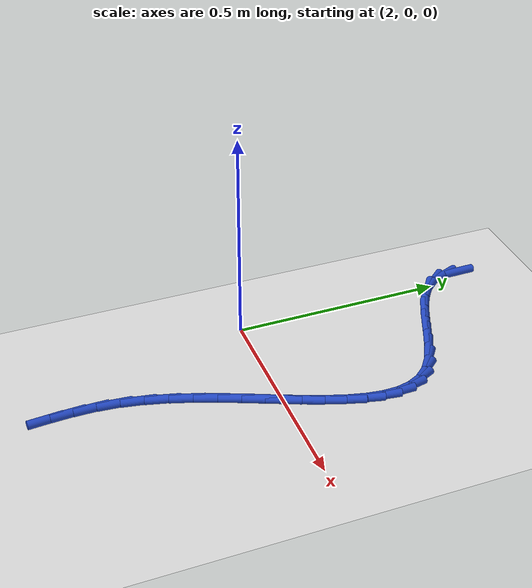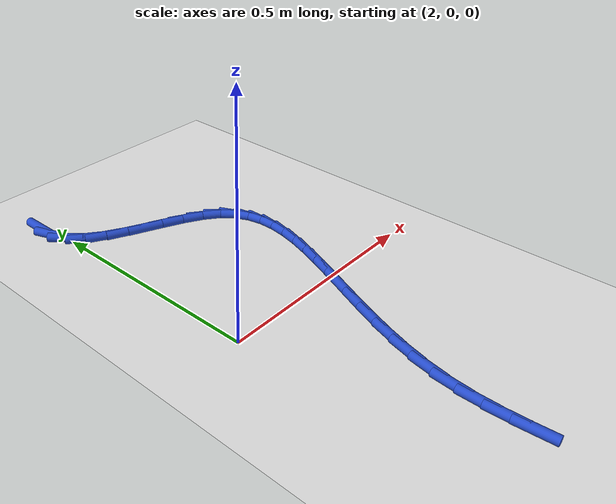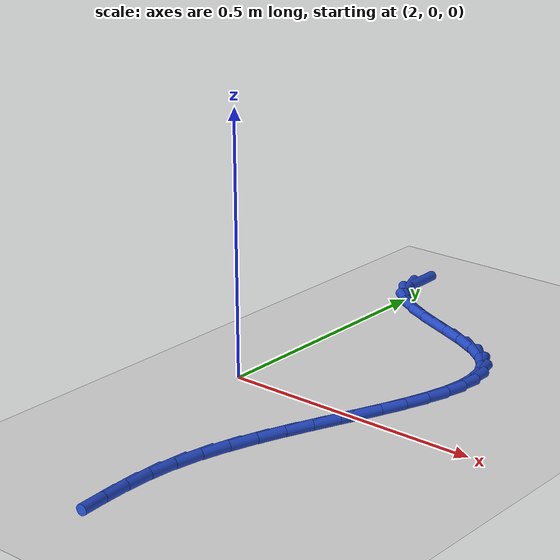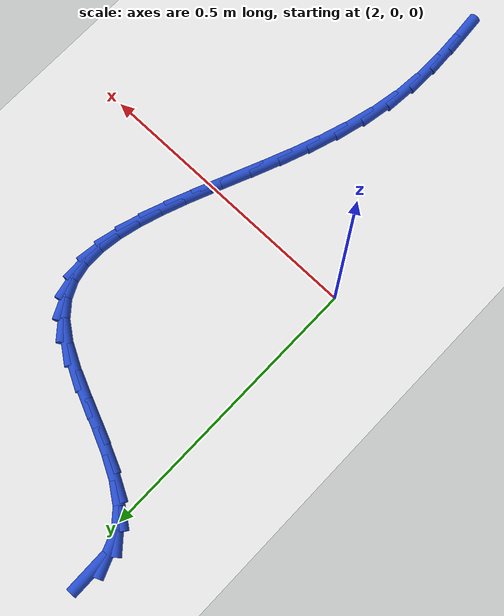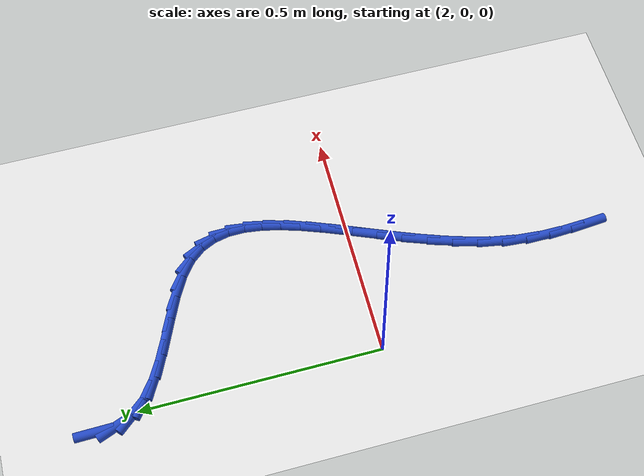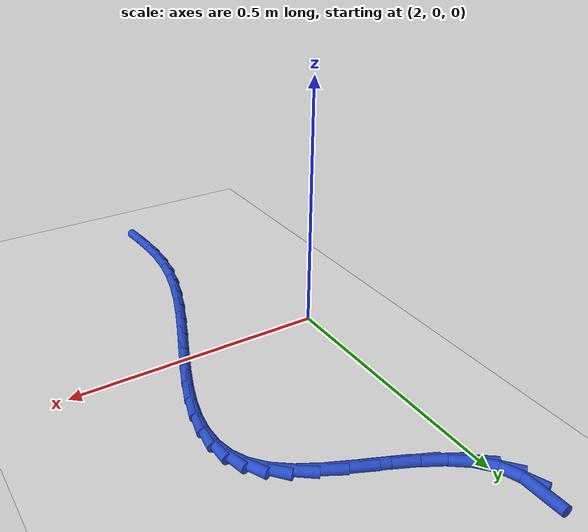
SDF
<sdf version="1.6">
 <world name="default">
  <model name="ground_plane">
   <static>1</static>
   <link name="link">
    <collision name="collision">
     <geometry><plane><normal>0 0 1</normal><size>100 100</size></plane></geometry>
     <surface><friction><ode><mu>100</mu><mu2>50</mu2></ode></friction></surface>
    </collision>
    <visual name="visual">
     <cast_shadows>0</cast_shadows>
     <geometry><plane><normal>0 0 1</normal><size>100 100</size></plane></geometry>
     <material>
      <script><uri>file://media/materials/scripts/gazebo.material</uri><name>Gazebo/WhiteGlow</name></script>
     </material>
    </visual>
   </link>
  </model>
  <model name="line">
   <link name="link_76">
    <pose>1.976926668266599 0.5870399198149353 0.01 0 1.57 -1.5561207616081631</pose>
    <collision name="collision">
     <geometry><cylinder><radius>0.01</radius><length>0.08</length></cylinder></geometry>
    </collision>
    <visual name="visual">
     <material>
      <script><name>Gazebo/Blue</name><uri>file://media/materials/scripts/gazebo.material</uri></script>
     </material>
     <geometry><cylinder><radius>0.01</radius><length>0.08</length></cylinder></geometry>
    </visual>
   </link>
   <link name="link_77">
    <pose>1.9775227201218342 0.5464275784137915 0.01 0 1.57 -1.1911691524824919</pose>
    <collision name="collision">
     <geometry><cylinder><radius>0.01</radius><length>0.08</length></cylinder></geometry>
    </collision>
    <visual name="visual">
     <material>
      <script><name>Gazebo/Blue</name><uri>file://media/materials/scripts/gazebo.material</uri></script>
     </material>
     <geometry><cylinder><radius>0.01</radius><length>0.08</length></cylinder></geometry>
    </visual>
   </link>
   <link name="link_78">
    <pose>1.991375269947519 0.511707710112623 0.01 0 1.57 -0.8541834276953869</pose>
    <collision name="collision">
     <geometry><cylinder><radius>0.01</radius><length>0.08</length></cylinder></geometry>
    </collision>
    <visual name="visual">
     <material>
      <script><name>Gazebo/Blue</name><uri>file://media/materials/scripts/gazebo.material</uri></script>
     </material>
     <geometry><cylinder><radius>0.01</radius><length>0.08</length></cylinder></geometry>
    </visual>
   </link>
   <link name="link_79">
    <pose>2.0169598006536513 0.4823371026553433 0.01 0 1.57 -0.6285751039968146</pose>
    <collision name="collision">
     <geometry><cylinder><radius>0.01</radius><length>0.08</length></cylinder></geometry>
    </collision>
    <visual name="visual">
     <material>
      <script><name>Gazebo/Blue</name><uri>file://media/materials/scripts/gazebo.material</uri></script>
     </material>
     <geometry><cylinder><radius>0.01</radius><length>0.08</length></cylinder></geometry>
    </visual>
   </link>
   <link name="link_80">
    <pose>2.051552602912916 0.45719039742961715 0.01 0 1.57 -0.49465646691797727</pose>
    <collision name="collision">
     <geometry><cylinder><radius>0.01</radius><length>0.08</length></cylinder></geometry>
    </collision>
    <visual name="visual">
     <material>
      <script><name>Gazebo/Blue</name><uri>file://media/materials/scripts/gazebo.material</uri></script>
     </material>
     <geometry><cylinder><radius>0.01</radius><length>0.08</length></cylinder></geometry>
    </visual>
   </link>
   <link name="link_81">
    <pose>2.0924295300891473 0.43514202353208215 0.01 0 1.57 -0.424331475846428</pose>
    <collision name="collision">
     <geometry><cylinder><radius>0.01</radius><length>0.08</length></cylinder></geometry>
    </collision>
    <visual name="visual">
     <material>
      <script><name>Gazebo/Blue</name><uri>file://media/materials/scripts/gazebo.material</uri></script>
     </material>
     <geometry><cylinder><radius>0.01</radius><length>0.08</length></cylinder></geometry>
    </visual>
   </link>
   <link name="link_82">
    <pose>2.1368664355461826 0.4150664100593753 0.01 0 1.57 -0.4016369612314232</pose>
    <collision name="collision">
     <geometry><cylinder><radius>0.01</radius><length>0.08</length></cylinder></geometry>
    </collision>
    <visual name="visual">
     <material>
      <script><name>Gazebo/Blue</name><uri>file://media/materials/scripts/gazebo.material</uri></script>
     </material>
     <geometry><cylinder><radius>0.01</radius><length>0.08</length></cylinder></geometry>
    </visual>
   </link>
   <link name="link_83">
    <pose>2.182139172647858 0.3958379861081334 0.01 0 1.57 -0.42254365303032254</pose>
    <collision name="collision">
     <geometry><cylinder><radius>0.01</radius><length>0.08</length></cylinder></geometry>
    </collision>
    <visual name="visual">
     <material>
      <script><name>Gazebo/Blue</name><uri>file://media/materials/scripts/gazebo.material</uri></script>
     </material>
     <geometry><cylinder><radius>0.01</radius><length>0.08</length></cylinder></geometry>
    </visual>
   </link>
   <link name="link_84">
    <pose>2.2255235947580085 0.3763311807749943 0.01 0 1.57 -0.49461190760615836</pose>
    <collision name="collision">
     <geometry><cylinder><radius>0.01</radius><length>0.08</length></cylinder></geometry>
    </collision>
    <visual name="visual">
     <material>
      <script><name>Gazebo/Blue</name><uri>file://media/materials/scripts/gazebo.material</uri></script>
     </material>
     <geometry><cylinder><radius>0.01</radius><length>0.08</length></cylinder></geometry>
    </visual>
   </link>
   <link name="link_85">
    <pose>2.264295555240471 0.35542042315659456 0.01 0 1.57 -0.6404566331524179</pose>
    <collision name="collision">
     <geometry><cylinder><radius>0.01</radius><length>0.08</length></cylinder></geometry>
    </collision>
    <visual name="visual">
     <material>
      <script><name>Gazebo/Blue</name><uri>file://media/materials/scripts/gazebo.material</uri></script>
     </material>
     <geometry><cylinder><radius>0.01</radius><length>0.08</length></cylinder></geometry>
    </visual>
   </link>
   <link name="link_86">
    <pose>2.2957425171723185 0.3319844543555239 0.01 0 1.57 -0.8676320434695225</pose>
    <collision name="collision">
     <geometry><cylinder><radius>0.01</radius><length>0.08</length></cylinder></geometry>
    </collision>
    <visual name="visual">
     <material>
      <script><name>Gazebo/Blue</name><uri>file://media/materials/scripts/gazebo.material</uri></script>
     </material>
     <geometry><cylinder><radius>0.01</radius><length>0.08</length></cylinder></geometry>
    </visual>
   </link>
   <link name="link_87">
    <pose>2.3183297820394775 0.30533948073521877 0.01 0 1.57 -1.120626432364721</pose>
    <collision name="collision">
     <geometry><cylinder><radius>0.01</radius><length>0.08</length></cylinder></geometry>
    </collision>
    <visual name="visual">
     <material>
      <script><name>Gazebo/Blue</name><uri>file://media/materials/scripts/gazebo.material</uri></script>
     </material>
     <geometry><cylinder><radius>0.01</radius><length>0.08</length></cylinder></geometry>
    </visual>
   </link>
   <link name="link_88">
    <pose>2.3326972803740347 0.2756093955674159 0.01 0 1.57 -1.3586519014329288</pose>
    <collision name="collision">
     <geometry><cylinder><radius>0.01</radius><length>0.08</length></cylinder></geometry>
    </collision>
    <visual name="visual">
     <material>
      <script><name>Gazebo/Blue</name><uri>file://media/materials/scripts/gazebo.material</uri></script>
     </material>
     <geometry><cylinder><radius>0.01</radius><length>0.08</length></cylinder></geometry>
    </visual>
   </link>
   <link name="link_89">
    <pose>2.3397197252800863 0.2430052935755408 0.01 0 1.57 -1.555142624802687</pose>
    <collision name="collision">
     <geometry><cylinder><radius>0.01</radius><length>0.08</length></cylinder></geometry>
    </collision>
    <visual name="visual">
     <material>
      <script><name>Gazebo/Blue</name><uri>file://media/materials/scripts/gazebo.material</uri></script>
     </material>
     <geometry><cylinder><radius>0.01</radius><length>0.08</length></cylinder></geometry>
    </visual>
   </link>
   <link name="link_90">
    <pose>2.3402718298617247 0.2077382694830172 0.01 0 1.57 1.4378712089685903</pose>
    <collision name="collision">
     <geometry><cylinder><radius>0.01</radius><length>0.08</length></cylinder></geometry>
    </collision>
    <visual name="visual">
     <material>
      <script><name>Gazebo/Blue</name><uri>file://media/materials/scripts/gazebo.material</uri></script>
     </material>
     <geometry><cylinder><radius>0.01</radius><length>0.08</length></cylinder></geometry>
    </visual>
   </link>
   <link name="link_91">
    <pose>2.335228307223044 0.17001941801327003 0.01 0 1.57 1.3311349623608568</pose>
    <collision name="collision">
     <geometry><cylinder><radius>0.01</radius><length>0.08</length></cylinder></geometry>
    </collision>
    <visual name="visual">
     <material>
      <script><name>Gazebo/Blue</name><uri>file://media/materials/scripts/gazebo.material</uri></script>
     </material>
     <geometry><cylinder><radius>0.01</radius><length>0.08</length></cylinder></geometry>
    </visual>
   </link>
   <link name="link_92">
    <pose>2.325463870468139 0.13005983388972275 0.01 0 1.57 1.2573370483364759</pose>
    <collision name="collision">
     <geometry><cylinder><radius>0.01</radius><length>0.08</length></cylinder></geometry>
    </collision>
    <visual name="visual">
     <material>
      <script><name>Gazebo/Blue</name><uri>file://media/materials/scripts/gazebo.material</uri></script>
     </material>
     <geometry><cylinder><radius>0.01</radius><length>0.08</length></cylinder></geometry>
    </visual>
   </link>
   <link name="link_93">
    <pose>2.311853232701103 0.0880706118358016 0.01 0 1.57 1.2089429990774962</pose>
    <collision name="collision">
     <geometry><cylinder><radius>0.01</radius><length>0.08</length></cylinder></geometry>
    </collision>
    <visual name="visual">
     <material>
      <script><name>Gazebo/Blue</name><uri>file://media/materials/scripts/gazebo.material</uri></script>
     </material>
     <geometry><cylinder><radius>0.01</radius><length>0.08</length></cylinder></geometry>
    </visual>
   </link>
   <link name="link_94">
    <pose>2.2952711070260308 0.04426284657493024 0.01 0 1.57 1.1805937842309817</pose>
    <collision name="collision">
     <geometry><cylinder><radius>0.01</radius><length>0.08</length></cylinder></geometry>
    </collision>
    <visual name="visual">
     <material>
      <script><name>Gazebo/Blue</name><uri>file://media/materials/scripts/gazebo.material</uri></script>
     </material>
     <geometry><cylinder><radius>0.01</radius><length>0.08</length></cylinder></geometry>
    </visual>
   </link>
   <link name="link_95">
    <pose>2.2765922065470154 -0.0011523671694668308 0.01 0 1.57 1.1688162882435027</pose>
    <collision name="collision">
     <geometry><cylinder><radius>0.01</radius><length>0.08</length></cylinder></geometry>
    </collision>
    <visual name="visual">
     <material>
      <script><name>Gazebo/Blue</name><uri>file://media/materials/scripts/gazebo.material</uri></script>
     </material>
     <geometry><cylinder><radius>0.01</radius><length>0.08</length></cylinder></geometry>
    </visual>
   </link>
   <link name="link_96">
    <pose>2.256691244368152 -0.047963934673964995 0.01 0 1.57 1.1715817550994596</pose>
    <collision name="collision">
     <geometry><cylinder><radius>0.01</radius><length>0.08</length></cylinder></geometry>
    </collision>
    <visual name="visual">
     <material>
      <script><name>Gazebo/Blue</name><uri>file://media/materials/scripts/gazebo.material</uri></script>
     </material>
     <geometry><cylinder><radius>0.01</radius><length>0.08</length></cylinder></geometry>
    </visual>
   </link>
   <link name="link_97">
    <pose>2.236442933593533 -0.0959607612151398 0.01 0 1.57 1.1879587651145824</pose>
    <collision name="collision">
     <geometry><cylinder><radius>0.01</radius><length>0.08</length></cylinder></geometry>
    </collision>
    <visual name="visual">
     <material>
      <script><name>Gazebo/Blue</name><uri>file://media/materials/scripts/gazebo.material</uri></script>
     </material>
     <geometry><cylinder><radius>0.01</radius><length>0.08</length></cylinder></geometry>
    </visual>
   </link>
   <link name="link_98">
    <pose>2.2167219873272535 -0.1449317520695677 0.01 0 1.57 1.2178804080635466</pose>
    <collision name="collision">
     <geometry><cylinder><radius>0.01</radius><length>0.08</length></cylinder></geometry>
    </collision>
    <visual name="visual">
     <material>
      <script><name>Gazebo/Blue</name><uri>file://media/materials/scripts/gazebo.material</uri></script>
     </material>
     <geometry><cylinder><radius>0.01</radius><length>0.08</length></cylinder></geometry>
    </visual>
   </link>
   <link name="link_99">
    <pose>2.1984031186734074 -0.1946658125138222 0.01 0 1.57 1.261985727884241</pose>
    <collision name="collision">
     <geometry><cylinder><radius>0.01</radius><length>0.08</length></cylinder></geometry>
    </collision>
    <visual name="visual">
     <material>
      <script><name>Gazebo/Blue</name><uri>file://media/materials/scripts/gazebo.material</uri></script>
     </material>
     <geometry><cylinder><radius>0.01</radius><length>0.08</length></cylinder></geometry>
    </visual>
   </link>
   <link name="link_100">
    <pose>2.1823610407360885 -0.24495184782447965 0.01 0 1.57 1.321475125162975</pose>
    <collision name="collision">
     <geometry><cylinder><radius>0.01</radius><length>0.08</length></cylinder></geometry>
    </collision>
    <visual name="visual">
     <material>
      <script><name>Gazebo/Blue</name><uri>file://media/materials/scripts/gazebo.material</uri></script>
     </material>
     <geometry><cylinder><radius>0.01</radius><length>0.08</length></cylinder></geometry>
    </visual>
   </link>
   <link name="link_101">
    <pose>2.169470466619391 -0.29557876327811583 0.01 0 1.57 1.397896027643031</pose>
    <collision name="collision">
     <geometry><cylinder><radius>0.01</radius><length>0.08</length></cylinder></geometry>
    </collision>
    <visual name="visual">
     <material>
      <script><name>Gazebo/Blue</name><uri>file://media/materials/scripts/gazebo.material</uri></script>
     </material>
     <geometry><cylinder><radius>0.01</radius><length>0.08</length></cylinder></geometry>
    </visual>
   </link>
   <link name="link_102">
    <pose>2.160606109427409 -0.3463354641513059 0.01 0 1.57 1.4894826770412086</pose>
    <collision name="collision">
     <geometry><cylinder><radius>0.01</radius><length>0.08</length></cylinder></geometry>
    </collision>
    <visual name="visual">
     <material>
      <script><name>Gazebo/Blue</name><uri>file://media/materials/scripts/gazebo.material</uri></script>
     </material>
     <geometry><cylinder><radius>0.01</radius><length>0.08</length></cylinder></geometry>
    </visual>
   </link>
   <link name="link_103">
    <pose>2.1564782502383184 -0.39698818373186995 0.01 0 1.57 1.569157032402854</pose>
    <collision name="collision">
     <geometry><cylinder><radius>0.01</radius><length>0.08</length></cylinder></geometry>
    </collision>
    <visual name="visual">
     <material>
      <script><name>Gazebo/Blue</name><uri>file://media/materials/scripts/gazebo.material</uri></script>
     </material>
     <geometry><cylinder><radius>0.01</radius><length>0.08</length></cylinder></geometry>
    </visual>
   </link>
   <link name="link_104">
    <pose>2.1563960857967523 -0.44710997293892396 0.01 0 1.57 -1.5185904190248332</pose>
    <collision name="collision">
     <geometry><cylinder><radius>0.01</radius><length>0.08</length></cylinder></geometry>
    </collision>
    <visual name="visual">
     <material>
      <script><name>Gazebo/Blue</name><uri>file://media/materials/scripts/gazebo.material</uri></script>
     </material>
     <geometry><cylinder><radius>0.01</radius><length>0.08</length></cylinder></geometry>
    </visual>
   </link>
   <link name="link_105">
    <pose>2.1589599595450952 -0.49617614556277095 0.01 0 1.57 -1.490841781544966</pose>
    <collision name="collision">
     <geometry><cylinder><radius>0.01</radius><length>0.08</length></cylinder></geometry>
    </collision>
    <visual name="visual">
     <material>
      <script><name>Gazebo/Blue</name><uri>file://media/materials/scripts/gazebo.material</uri></script>
     </material>
     <geometry><cylinder><radius>0.01</radius><length>0.08</length></cylinder></geometry>
    </visual>
   </link>
  </model>
 </world>
</sdf>
